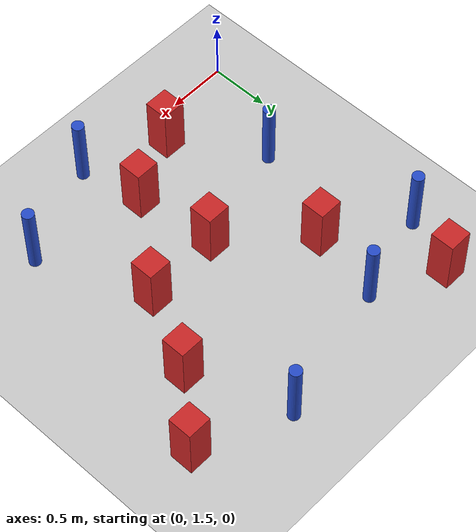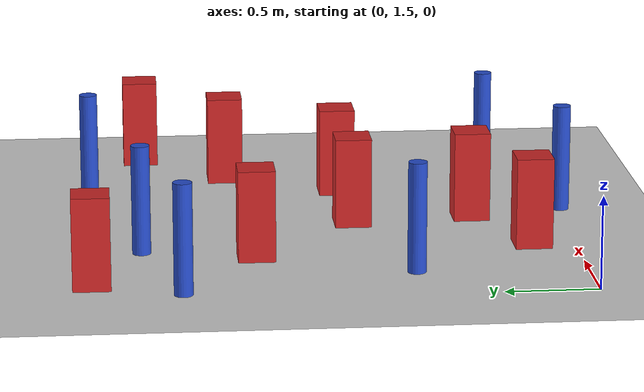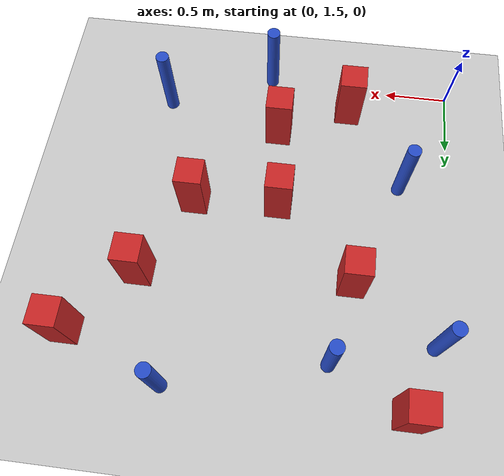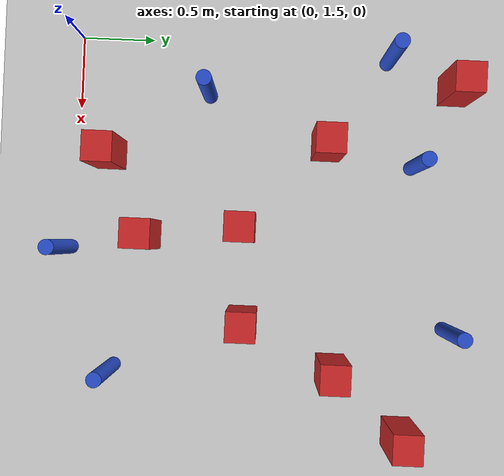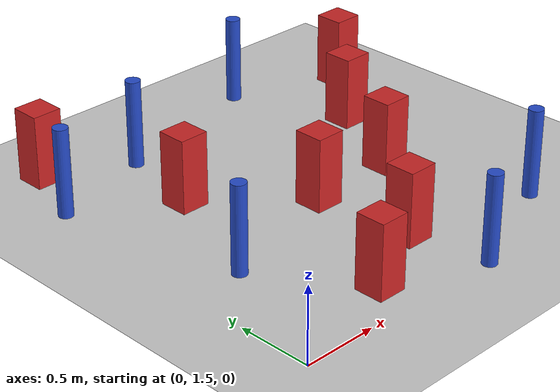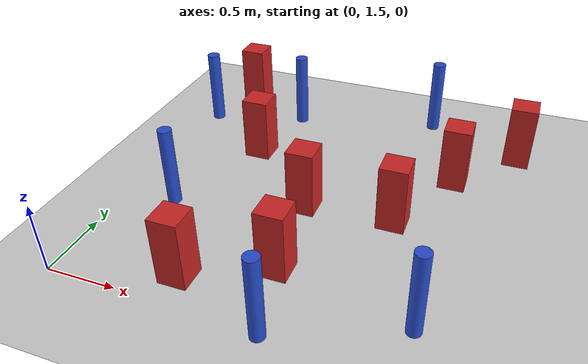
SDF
<sdf version="1.6">
 <world name="default">
  <model name="ground_plane">
   <static>1</static>
   <link name="link">
    <collision name="collision">
     <geometry><plane><normal>0 0 1</normal><size>100 100</size></plane></geometry>
     <surface><friction><ode><mu>100</mu><mu2>50</mu2></ode></friction></surface>
    </collision>
    <visual name="visual">
     <cast_shadows>0</cast_shadows>
     <geometry><plane><normal>0 0 1</normal><size>100 100</size></plane></geometry>
     <material>
      <ambient>1.0 1.0 1.0 1.0</ambient>
      <diffuse>0.8 0.8 0.8 1.0</diffuse>
      <specular>0.01 0.01 0.01 1.000000</specular>
     </material>
    </visual>
   </link>
  </model>
  <model name="pole_obstacle1">
   <static>true</static>
   <pose>1.48350776402 1.47035718474 7.38925637345e-09 -8.471706928e-08 1.24976765079e-08 -1.74513093017e-07</pose>
   <link name="link">
    <pose>0 0 0.3 0 -0 0</pose>
    <inertial>
     <mass>1</mass>
     <inertia><ixx>0.145833</ixx><ixy>0</ixy><ixz>0</ixz><iyy>0.145833</iyy><iyz>0</iyz><izz>0.125</izz></inertia>
    </inertial>
    <collision name="collision">
     <geometry><cylinder><radius>0.05</radius><length>.6</length></cylinder></geometry>
    </collision>
    <visual name="visual">
     <geometry><cylinder><radius>0.05</radius><length>.6</length></cylinder></geometry>
     <material>
      <script><name>Gazebo/Blue</name><uri>file://media/materials/scripts/gazebo.material</uri></script>
     </material>
    </visual>
   </link>
  </model>
  <model name="square_post_obstacle31">
   <static>true</static>
   <pose>2.26156121374 3.33045627502 1.91545236811e-07 -7.35059704564e-06 1.12565212e-07 2.39332434364e-05</pose>
   <link name="link">
    <pose>0 0 0.25 0 -0 0</pose>
    <inertial>
     <mass>100</mass>
     <inertia>
      <ixx>0.166667</ixx>
      <ixy>0</ixy>
      <ixz>0</ixz>
      <iyy>0.166667</iyy>
      <iyz>0</iyz>
      <izz>0.166667</izz>
     </inertia>
    </inertial>
    <collision name="collision"><geometry><box><size>.2 .2 .5</size></box></geometry></collision>
    <visual name="visual">
     <geometry><box><size>.2 .2 .5</size></box></geometry>
     <material>
      <script><name>Gazebo/Red</name><uri>file://media/materials/scripts/gazebo.material</uri></script>
     </material>
    </visual>
   </link>
  </model>
  <model name="square_post_obstacle50">
   <static>true</static>
   <pose>1.30148058443 2.66913933587 1.91545236811e-07 -7.35059704564e-06 1.12565212e-07 2.39332434364e-05</pose>
   <link name="link">
    <pose>0 0 0.25 0 -0 0</pose>
    <inertial>
     <mass>100</mass>
     <inertia>
      <ixx>0.166667</ixx>
      <ixy>0</ixy>
      <ixz>0</ixz>
      <iyy>0.166667</iyy>
      <iyz>0</iyz>
      <izz>0.166667</izz>
     </inertia>
    </inertial>
    <collision name="collision"><geometry><box><size>.2 .2 .5</size></box></geometry></collision>
    <visual name="visual">
     <geometry><box><size>.2 .2 .5</size></box></geometry>
     <material>
      <script><name>Gazebo/Red</name><uri>file://media/materials/scripts/gazebo.material</uri></script>
     </material>
    </visual>
   </link>
  </model>
  <model name="square_post_obstacle60">
   <static>true</static>
   <pose>0.823319216897 1.73336303704 1.91545236811e-07 -7.35059704564e-06 1.12565212e-07 2.39332434364e-05</pose>
   <link name="link">
    <pose>0 0 0.25 0 -0 0</pose>
    <inertial>
     <mass>100</mass>
     <inertia>
      <ixx>0.166667</ixx>
      <ixy>0</ixy>
      <ixz>0</ixz>
      <iyy>0.166667</iyy>
      <iyz>0</iyz>
      <izz>0.166667</izz>
     </inertia>
    </inertial>
    <collision name="collision"><geometry><box><size>.2 .2 .5</size></box></geometry></collision>
    <visual name="visual">
     <geometry><box><size>.2 .2 .5</size></box></geometry>
     <material>
      <script><name>Gazebo/Red</name><uri>file://media/materials/scripts/gazebo.material</uri></script>
     </material>
    </visual>
   </link>
  </model>
  <model name="square_post_obstacle69">
   <static>true</static>
   <pose>1.37323671497 1.99977081046 1.91545236811e-07 -7.35059704564e-06 1.12565212e-07 2.39332434364e-05</pose>
   <link name="link">
    <pose>0 0 0.25 0 -0 0</pose>
    <inertial>
     <mass>100</mass>
     <inertia>
      <ixx>0.166667</ixx>
      <ixy>0</ixy>
      <ixz>0</ixz>
      <iyy>0.166667</iyy>
      <iyz>0</iyz>
      <izz>0.166667</izz>
     </inertia>
    </inertial>
    <collision name="collision"><geometry><box><size>.2 .2 .5</size></box></geometry></collision>
    <visual name="visual">
     <geometry><box><size>.2 .2 .5</size></box></geometry>
     <material>
      <script><name>Gazebo/Red</name><uri>file://media/materials/scripts/gazebo.material</uri></script>
     </material>
    </visual>
   </link>
  </model>
  <model name="square_post_obstacle92">
   <static>true</static>
   <pose>0.70456642349 3.23890737635 1.91545236811e-07 -7.35059704564e-06 1.12565212e-07 2.39332434364e-05</pose>
   <link name="link">
    <pose>0 0 0.25 0 -0 0</pose>
    <inertial>
     <mass>100</mass>
     <inertia>
      <ixx>0.166667</ixx>
      <ixy>0</ixy>
      <ixz>0</ixz>
      <iyy>0.166667</iyy>
      <iyz>0</iyz>
      <izz>0.166667</izz>
     </inertia>
    </inertial>
    <collision name="collision"><geometry><box><size>.2 .2 .5</size></box></geometry></collision>
    <visual name="visual">
     <geometry><box><size>.2 .2 .5</size></box></geometry>
     <material>
      <script><name>Gazebo/Red</name><uri>file://media/materials/scripts/gazebo.material</uri></script>
     </material>
    </visual>
   </link>
  </model>
  <model name="pole_obstacle119">
   <static>true</static>
   <pose>0.827692453384 3.84690031925 7.38925637345e-09 -8.47170692799e-08 1.2497676509e-08 -1.74513093016e-07</pose>
   <link name="link">
    <pose>0 0 0.3 0 -0 0</pose>
    <inertial>
     <mass>1</mass>
     <inertia><ixx>0.145833</ixx><ixy>0</ixy><ixz>0</ixz><iyy>0.145833</iyy><iyz>0</iyz><izz>0.125</izz></inertia>
    </inertial>
    <collision name="collision">
     <geometry><cylinder><radius>0.05</radius><length>.6</length></cylinder></geometry>
    </collision>
    <visual name="visual">
     <geometry><cylinder><radius>0.05</radius><length>.6</length></cylinder></geometry>
     <material>
      <script><name>Gazebo/Blue</name><uri>file://media/materials/scripts/gazebo.material</uri></script>
     </material>
    </visual>
   </link>
  </model>
  <model name="pole_obstacle137">
   <static>true</static>
   <pose>0.0940525441943 3.64748490505 7.38925637345e-09 -8.47170692799e-08 1.24976765021e-08 -1.74513093019e-07</pose>
   <link name="link">
    <pose>0 0 0.3 0 -0 0</pose>
    <inertial>
     <mass>1</mass>
     <inertia><ixx>0.145833</ixx><ixy>0</ixy><ixz>0</ixz><iyy>0.145833</iyy><iyz>0</iyz><izz>0.125</izz></inertia>
    </inertial>
    <collision name="collision">
     <geometry><cylinder><radius>0.05</radius><length>.6</length></cylinder></geometry>
    </collision>
    <visual name="visual">
     <geometry><cylinder><radius>0.05</radius><length>.6</length></cylinder></geometry>
     <material>
      <script><name>Gazebo/Blue</name><uri>file://media/materials/scripts/gazebo.material</uri></script>
     </material>
    </visual>
   </link>
  </model>
  <model name="pole_obstacle141">
   <static>true</static>
   <pose>0.378907875785 2.41160785974 7.38925637345e-09 -8.471706928e-08 1.24976765084e-08 -1.74513093017e-07</pose>
   <link name="link">
    <pose>0 0 0.3 0 -0 0</pose>
    <inertial>
     <mass>1</mass>
     <inertia><ixx>0.145833</ixx><ixy>0</ixy><ixz>0</ixz><iyy>0.145833</iyy><iyz>0</iyz><izz>0.125</izz></inertia>
    </inertial>
    <collision name="collision">
     <geometry><cylinder><radius>0.05</radius><length>.6</length></cylinder></geometry>
    </collision>
    <visual name="visual">
     <geometry><cylinder><radius>0.05</radius><length>.6</length></cylinder></geometry>
     <material>
      <script><name>Gazebo/Blue</name><uri>file://media/materials/scripts/gazebo.material</uri></script>
     </material>
    </visual>
   </link>
  </model>
  <model name="square_post_obstacle134">
   <static>true</static>
   <pose>1.94886774105 2.70409674143 1.91545236811e-07 -7.35059704564e-06 1.12565212e-07 2.39332434364e-05</pose>
   <link name="link">
    <pose>0 0 0.25 0 -0 0</pose>
    <inertial>
     <mass>100</mass>
     <inertia>
      <ixx>0.166667</ixx>
      <ixy>0</ixy>
      <ixz>0</ixz>
      <iyy>0.166667</iyy>
      <iyz>0</iyz>
      <izz>0.166667</izz>
     </inertia>
    </inertial>
    <collision name="collision"><geometry><box><size>.2 .2 .5</size></box></geometry></collision>
    <visual name="visual">
     <geometry><box><size>.2 .2 .5</size></box></geometry>
     <material>
      <script><name>Gazebo/Red</name><uri>file://media/materials/scripts/gazebo.material</uri></script>
     </material>
    </visual>
   </link>
  </model>
  <model name="pole_obstacle156">
   <static>true</static>
   <pose>2.30322710522 1.8044334905 7.38925637345e-09 -8.471706928e-08 1.24976765152e-08 -1.74513093012e-07</pose>
   <link name="link">
    <pose>0 0 0.3 0 -0 0</pose>
    <inertial>
     <mass>1</mass>
     <inertia><ixx>0.145833</ixx><ixy>0</ixy><ixz>0</ixz><iyy>0.145833</iyy><iyz>0</iyz><izz>0.125</izz></inertia>
    </inertial>
    <collision name="collision">
     <geometry><cylinder><radius>0.05</radius><length>.6</length></cylinder></geometry>
    </collision>
    <visual name="visual">
     <geometry><cylinder><radius>0.05</radius><length>.6</length></cylinder></geometry>
     <material>
      <script><name>Gazebo/Blue</name><uri>file://media/materials/scripts/gazebo.material</uri></script>
     </material>
    </visual>
   </link>
  </model>
  <model name="square_post_obstacle163">
   <static>true</static>
   <pose>0.274885311733 4.1161868562 1.91545236811e-07 -7.35059704564e-06 1.12565212e-07 2.39332434364e-05</pose>
   <link name="link">
    <pose>0 0 0.25 0 -0 0</pose>
    <inertial>
     <mass>100</mass>
     <inertia>
      <ixx>0.166667</ixx>
      <ixy>0</ixy>
      <ixz>0</ixz>
      <iyy>0.166667</iyy>
      <iyz>0</iyz>
      <izz>0.166667</izz>
     </inertia>
    </inertial>
    <collision name="collision"><geometry><box><size>.2 .2 .5</size></box></geometry></collision>
    <visual name="visual">
     <geometry><box><size>.2 .2 .5</size></box></geometry>
     <material>
      <script><name>Gazebo/Red</name><uri>file://media/materials/scripts/gazebo.material</uri></script>
     </material>
    </visual>
   </link>
  </model>
  <model name="pole_obstacle178">
   <static>true</static>
   <pose>1.95550913797 4.11860751628 7.38925637345e-09 -8.471706928e-08 1.24976765202e-08 -1.7451309301e-07</pose>
   <link name="link">
    <pose>0 0 0.3 0 -0 0</pose>
    <inertial>
     <mass>1</mass>
     <inertia><ixx>0.145833</ixx><ixy>0</ixy><ixz>0</ixz><iyy>0.145833</iyy><iyz>0</iyz><izz>0.125</izz></inertia>
    </inertial>
    <collision name="collision">
     <geometry><cylinder><radius>0.05</radius><length>.6</length></cylinder></geometry>
    </collision>
    <visual name="visual">
     <geometry><cylinder><radius>0.05</radius><length>.6</length></cylinder></geometry>
     <material>
      <script><name>Gazebo/Blue</name><uri>file://media/materials/scripts/gazebo.material</uri></script>
     </material>
    </visual>
   </link>
  </model>
  <model name="square_post_obstacle208">
   <static>true</static>
   <pose>2.68831516785 3.81515235677 1.91545236811e-07 -7.35059704564e-06 1.12565212e-07 2.39332434364e-05</pose>
   <link name="link">
    <pose>0 0 0.25 0 -0 0</pose>
    <inertial>
     <mass>100</mass>
     <inertia>
      <ixx>0.166667</ixx>
      <ixy>0</ixy>
      <ixz>0</ixz>
      <iyy>0.166667</iyy>
      <iyz>0</iyz>
      <izz>0.166667</izz>
     </inertia>
    </inertial>
    <collision name="collision"><geometry><box><size>.2 .2 .5</size></box></geometry></collision>
    <visual name="visual">
     <geometry><box><size>.2 .2 .5</size></box></geometry>
     <material>
      <script><name>Gazebo/Red</name><uri>file://media/materials/scripts/gazebo.material</uri></script>
     </material>
    </visual>
   </link>
  </model>
 </world>
</sdf>
